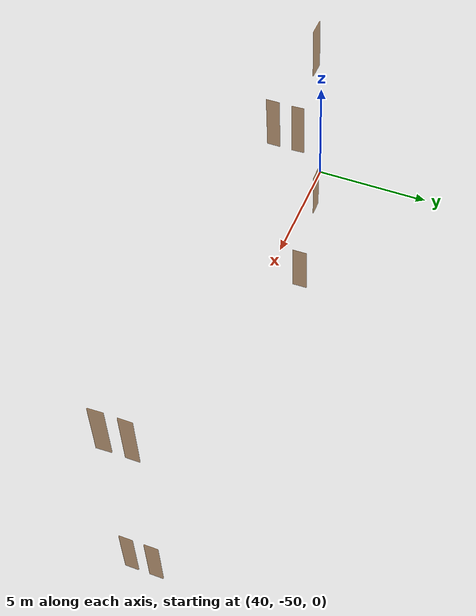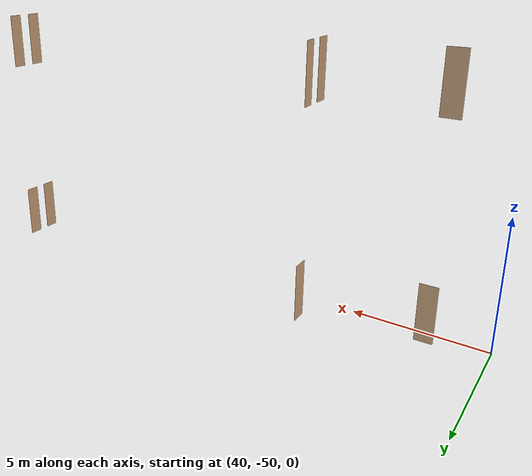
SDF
<sdf version="1.7">
 <world name="estce">
  <model name="TD1003CI">
   <pose>42.161714970803274 -49.42168282745601 0.0 0 0 -3.1108152612975006</pose>
   <link name="right">
    <pose>0 0 1.11 0 0 0</pose>
    <visual name="right_visual">
     <geometry><box><size>0.6661358327263901 0.03 2.2</size></box></geometry>
     <material><ambient>0.5 0.25 0 0.6</ambient><diffuse>0.5 0.25 0 0.6</diffuse></material>
    </visual>
    <collision name="right_collision">
     <geometry><box><size>0.6661358327263901 0.03 2.2</size></box></geometry>
     <surface><contact><collide_bitmask>0x02</collide_bitmask></contact></surface>
    </collision>
    <inertial>
     <mass>50.0</mass>
     <inertia><ixx>20.17041666666667</ixx><iyy>22.015570615175342</iyy><izz>1.8526539485086717</izz></inertia>
    </inertial>
   </link>
   <joint name="right_joint" type="revolute">
    <parent>world</parent>
    <child>right</child>
    <axis><xyz>0 0 1</xyz><limit><lower>0</lower><upper>1.57</upper></limit></axis>
    <pose>0.33806791636319505 0 0 0 0 0</pose>
   </joint>
   <plugin name="door" filename="libdoor.so">
    <v_max_door>0.5</v_max_door>
    <a_max_door>0.3</a_max_door>
    <a_nom_door>0.15</a_nom_door>
    <dx_min_door>0.01</dx_min_door>
    <f_max_door>500.0</f_max_door>
    <door name="TD1003CI" type="SwingDoor" left_joint_name="empty_joint" right_joint_name="right_joint"/>
   </plugin>
  </model>
  <model name="bano02">
   <pose>46.556525343689856 -48.4981205128844 0.0 0 0 1.5918249008363818</pose>
   <link name="right">
    <pose>0 0 1.11 0 0 0</pose>
    <visual name="right_visual">
     <geometry><box><size>0.6101771898056049 0.03 2.2</size></box></geometry>
     <material><ambient>0.5 0.25 0 0.6</ambient><diffuse>0.5 0.25 0 0.6</diffuse></material>
    </visual>
    <collision name="right_collision">
     <geometry><box><size>0.6101771898056049 0.03 2.2</size></box></geometry>
     <surface><contact><collide_bitmask>0x02</collide_bitmask></contact></surface>
    </collision>
    <inertial>
     <mass>50.0</mass>
     <inertia><ixx>20.17041666666667</ixx><iyy>21.717984178996108</iyy><izz>1.5550675123294382</izz></inertia>
    </inertial>
   </link>
   <joint name="right_joint" type="revolute">
    <parent>world</parent>
    <child>right</child>
    <axis><xyz>0 0 -1</xyz><limit><lower>0</lower><upper>1.57</upper></limit></axis>
    <pose>0.31008859490280244 0 0 0 0 0</pose>
   </joint>
   <plugin name="door" filename="libdoor.so">
    <v_max_door>0.5</v_max_door>
    <a_max_door>0.3</a_max_door>
    <a_nom_door>0.15</a_nom_door>
    <dx_min_door>0.01</dx_min_door>
    <f_max_door>500.0</f_max_door>
    <door name="bano02" type="SwingDoor" left_joint_name="empty_joint" right_joint_name="right_joint"/>
   </plugin>
  </model>
  <model name="bano08">
   <pose>60.78976126052451 -48.53715217578514 0.0 0 0 1.5717737241623335</pose>
   <link name="right">
    <pose>0 0 1.11 0 0 0</pose>
    <visual name="right_visual">
     <geometry><box><size>0.5411345257741597 0.03 2.2</size></box></geometry>
     <material><ambient>0.5 0.25 0 0.6</ambient><diffuse>0.5 0.25 0 0.6</diffuse></material>
    </visual>
    <collision name="right_collision">
     <geometry><box><size>0.5411345257741597 0.03 2.2</size></box></geometry>
     <surface><contact><collide_bitmask>0x02</collide_bitmask></contact></surface>
    </collision>
    <inertial>
     <mass>50.0</mass>
     <inertia><ixx>20.17041666666667</ixx><iyy>21.386777395770107</iyy><izz>1.2238607291034362</izz></inertia>
    </inertial>
   </link>
   <joint name="right_joint" type="revolute">
    <parent>world</parent>
    <child>right</child>
    <axis><xyz>0 0 1</xyz><limit><lower>0</lower><upper>1.57</upper></limit></axis>
    <pose>0.27556726288707983 0 0 0 0 0</pose>
   </joint>
   <plugin name="door" filename="libdoor.so">
    <v_max_door>0.5</v_max_door>
    <a_max_door>0.3</a_max_door>
    <a_nom_door>0.15</a_nom_door>
    <dx_min_door>0.01</dx_min_door>
    <f_max_door>500.0</f_max_door>
    <door name="bano08" type="SwingDoor" left_joint_name="empty_joint" right_joint_name="right_joint"/>
   </plugin>
  </model>
  <model name="bano09">
   <pose>60.79003059919892 -49.49870246589414 0.0 0 0 1.5707963267948966</pose>
   <link name="right">
    <pose>0 0 1.11 0 0 0</pose>
    <visual name="right_visual">
     <geometry><box><size>0.5286773488315057 0.03 2.2</size></box></geometry>
     <material><ambient>0.5 0.25 0 0.6</ambient><diffuse>0.5 0.25 0 0.6</diffuse></material>
    </visual>
    <collision name="right_collision">
     <geometry><box><size>0.5286773488315057 0.03 2.2</size></box></geometry>
     <surface><contact><collide_bitmask>0x02</collide_bitmask></contact></surface>
    </collision>
    <inertial>
     <mass>50.0</mass>
     <inertia><ixx>20.17041666666667</ixx><iyy>21.331248913197964</iyy><izz>1.16833224653129</izz></inertia>
    </inertial>
   </link>
   <joint name="right_joint" type="revolute">
    <parent>world</parent>
    <child>right</child>
    <axis><xyz>0 0 1</xyz><limit><lower>0</lower><upper>1.57</upper></limit></axis>
    <pose>0.2693386744157529 0 0 0 0 0</pose>
   </joint>
   <plugin name="door" filename="libdoor.so">
    <v_max_door>0.5</v_max_door>
    <a_max_door>0.3</a_max_door>
    <a_nom_door>0.15</a_nom_door>
    <dx_min_door>0.01</dx_min_door>
    <f_max_door>500.0</f_max_door>
    <door name="bano09" type="SwingDoor" left_joint_name="empty_joint" right_joint_name="right_joint"/>
   </plugin>
  </model>
  <model name="TD1116CT">
   <pose>42.13165229551727 -49.469770444557135 8.0 0 0 -3.1414135882629983</pose>
   <link name="right">
    <pose>0 0 1.11 0 0 0</pose>
    <visual name="right_visual">
     <geometry><box><size>0.7019451403396002 0.03 2.2</size></box></geometry>
     <material><ambient>0.5 0.25 0 0.6</ambient><diffuse>0.5 0.25 0 0.6</diffuse></material>
    </visual>
    <collision name="right_collision">
     <geometry><box><size>0.7019451403396002 0.03 2.2</size></box></geometry>
     <surface><contact><collide_bitmask>0x02</collide_bitmask></contact></surface>
    </collision>
    <inertial>
     <mass>50.0</mass>
     <inertia><ixx>20.17041666666667</ixx><iyy>22.21969575019326</iyy><izz>2.056779083526588</izz></inertia>
    </inertial>
   </link>
   <joint name="right_joint" type="revolute">
    <parent>world</parent>
    <child>right</child>
    <axis><xyz>0 0 1</xyz><limit><lower>0</lower><upper>1.57</upper></limit></axis>
    <pose>0.3559725701698001 0 0 0 0 0</pose>
   </joint>
   <plugin name="door" filename="libdoor.so">
    <v_max_door>0.5</v_max_door>
    <a_max_door>0.3</a_max_door>
    <a_nom_door>0.15</a_nom_door>
    <dx_min_door>0.01</dx_min_door>
    <f_max_door>500.0</f_max_door>
    <door name="TD1116CT" type="SwingDoor" left_joint_name="empty_joint" right_joint_name="right_joint"/>
   </plugin>
  </model>
  <model name="bano2">
   <pose>46.56346860594233 -48.55060622142908 8.0 0 0 1.6194787439386857</pose>
   <link name="right">
    <pose>0 0 1.11 0 0 0</pose>
    <visual name="right_visual">
     <geometry><box><size>0.47147375781130063 0.03 2.2</size></box></geometry>
     <material><ambient>0.5 0.25 0 0.6</ambient><diffuse>0.5 0.25 0 0.6</diffuse></material>
    </visual>
    <collision name="right_collision">
     <geometry><box><size>0.47147375781130063 0.03 2.2</size></box></geometry>
     <surface><contact><collide_bitmask>0x02</collide_bitmask></contact></surface>
    </collision>
    <inertial>
     <mass>50.0</mass>
     <inertia><ixx>20.17041666666667</ixx><iyy>21.092864601269625</iyy><izz>0.9299479346029541</izz></inertia>
    </inertial>
   </link>
   <joint name="right_joint" type="revolute">
    <parent>world</parent>
    <child>right</child>
    <axis><xyz>0 0 -1</xyz><limit><lower>0</lower><upper>1.57</upper></limit></axis>
    <pose>0.24073687890565032 0 0 0 0 0</pose>
   </joint>
   <plugin name="door" filename="libdoor.so">
    <v_max_door>0.5</v_max_door>
    <a_max_door>0.3</a_max_door>
    <a_nom_door>0.15</a_nom_door>
    <dx_min_door>0.01</dx_min_door>
    <f_max_door>500.0</f_max_door>
    <door name="bano2" type="SwingDoor" left_joint_name="empty_joint" right_joint_name="right_joint"/>
   </plugin>
  </model>
  <model name="bano3">
   <pose>46.57076823740256 -49.51671839086791 8.0 0 0 1.5714524499396092</pose>
   <link name="right">
    <pose>0 0 1.11 0 0 0</pose>
    <visual name="right_visual">
     <geometry><box><size>0.5075620440748119 0.03 2.2</size></box></geometry>
     <material><ambient>0.5 0.25 0 0.6</ambient><diffuse>0.5 0.25 0 0.6</diffuse></material>
    </visual>
    <collision name="right_collision">
     <geometry><box><size>0.5075620440748119 0.03 2.2</size></box></geometry>
     <surface><contact><collide_bitmask>0x02</collide_bitmask></contact></surface>
    </collision>
    <inertial>
     <mass>50.0</mass>
     <inertia><ixx>20.17041666666667</ixx><iyy>21.240080119105844</iyy><izz>1.077163452439172</izz></inertia>
    </inertial>
   </link>
   <joint name="right_joint" type="revolute">
    <parent>world</parent>
    <child>right</child>
    <axis><xyz>0 0 -1</xyz><limit><lower>0</lower><upper>1.57</upper></limit></axis>
    <pose>0.25878102203740594 0 0 0 0 0</pose>
   </joint>
   <plugin name="door" filename="libdoor.so">
    <v_max_door>0.5</v_max_door>
    <a_max_door>0.3</a_max_door>
    <a_nom_door>0.15</a_nom_door>
    <dx_min_door>0.01</dx_min_door>
    <f_max_door>500.0</f_max_door>
    <door name="bano3" type="SwingDoor" left_joint_name="empty_joint" right_joint_name="right_joint"/>
   </plugin>
  </model>
  <model name="bano8">
   <pose>60.781529853885814 -48.5473083155301 8.0 0 0 1.564084700622381</pose>
   <link name="right">
    <pose>0 0 1.11 0 0 0</pose>
    <visual name="right_visual">
     <geometry><box><size>0.5014238975936707 0.03 2.2</size></box></geometry>
     <material><ambient>0.5 0.25 0 0.6</ambient><diffuse>0.5 0.25 0 0.6</diffuse></material>
    </visual>
    <collision name="right_collision">
     <geometry><box><size>0.5014238975936707 0.03 2.2</size></box></geometry>
     <surface><contact><collide_bitmask>0x02</collide_bitmask></contact></surface>
    </collision>
    <inertial>
     <mass>50.0</mass>
     <inertia><ixx>20.17041666666667</ixx><iyy>21.21427468782512</iyy><izz>1.0513580211584497</izz></inertia>
    </inertial>
   </link>
   <joint name="right_joint" type="revolute">
    <parent>world</parent>
    <child>right</child>
    <axis><xyz>0 0 1</xyz><limit><lower>0</lower><upper>1.57</upper></limit></axis>
    <pose>0.25571194879683534 0 0 0 0 0</pose>
   </joint>
   <plugin name="door" filename="libdoor.so">
    <v_max_door>0.5</v_max_door>
    <a_max_door>0.3</a_max_door>
    <a_nom_door>0.15</a_nom_door>
    <dx_min_door>0.01</dx_min_door>
    <f_max_door>500.0</f_max_door>
    <door name="bano8" type="SwingDoor" left_joint_name="empty_joint" right_joint_name="right_joint"/>
   </plugin>
  </model>
  <model name="bano9">
   <pose>60.7830405702094 -49.525576080478196 8.0 0 0 1.6080317512604094</pose>
   <link name="right">
    <pose>0 0 1.11 0 0 0</pose>
    <visual name="right_visual">
     <geometry><box><size>0.5401273478474014 0.03 2.2</size></box></geometry>
     <material><ambient>0.5 0.25 0 0.6</ambient><diffuse>0.5 0.25 0 0.6</diffuse></material>
    </visual>
    <collision name="right_collision">
     <geometry><box><size>0.5401273478474014 0.03 2.2</size></box></geometry>
     <surface><contact><collide_bitmask>0x02</collide_bitmask></contact></surface>
    </collision>
    <inertial>
     <mass>50.0</mass>
     <inertia><ixx>20.17041666666667</ixx><iyy>21.38223979955279</iyy><izz>1.2193231328861156</izz></inertia>
    </inertial>
   </link>
   <joint name="right_joint" type="revolute">
    <parent>world</parent>
    <child>right</child>
    <axis><xyz>0 0 1</xyz><limit><lower>0</lower><upper>1.57</upper></limit></axis>
    <pose>0.2750636739237007 0 0 0 0 0</pose>
   </joint>
   <plugin name="door" filename="libdoor.so">
    <v_max_door>0.5</v_max_door>
    <a_max_door>0.3</a_max_door>
    <a_nom_door>0.15</a_nom_door>
    <dx_min_door>0.01</dx_min_door>
    <f_max_door>500.0</f_max_door>
    <door name="bano9" type="SwingDoor" left_joint_name="empty_joint" right_joint_name="right_joint"/>
   </plugin>
  </model>
 </world>
</sdf>
